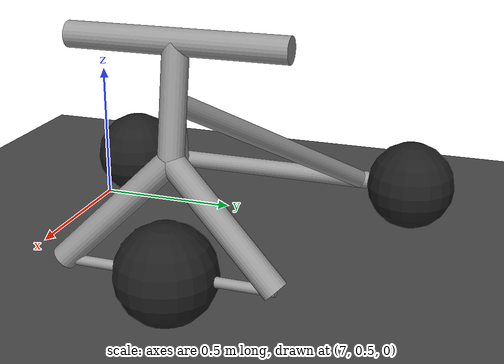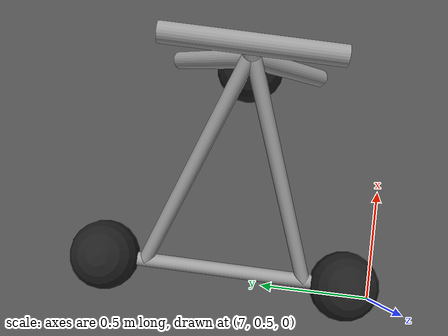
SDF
<sdf version="1.7">
 <world name="default">
  <model name="ground_plane">
   <static>1</static>
   <link name="link">
    <collision name="collision">
     <geometry><plane><normal>0 0 1</normal><size>100 100</size></plane></geometry>
     <surface>
      <contact><collide_bitmask>65535</collide_bitmask></contact>
      <friction><ode><mu>100</mu><mu2>50</mu2></ode></friction>
     </surface>
    </collision>
    <visual name="visual">
     <cast_shadows>0</cast_shadows>
     <geometry><plane><normal>0 0 1</normal><size>100 100</size></plane></geometry>
     <material>
      <script><uri>file://media/materials/scripts/gazebo.material</uri><name>Gazebo/Grey</name></script>
     </material>
    </visual>
   </link>
  </model>
  <model name="asphalt_plane">
   <static>1</static>
   <link name="link">
    <collision name="collision"><geometry><box><size>20 20 0.1</size></box></geometry></collision>
    <visual name="visual">
     <cast_shadows>0</cast_shadows>
     <geometry><box><size>20 20 0.1</size></box></geometry>
     <material>
      <script>
       <uri>model://asphalt_plane/materials/scripts</uri>
       <uri>model://asphalt_plane/materials/textures</uri>
       <name>vrc/asphalt</name>
      </script>
     </material>
    </visual>
   </link>
   <pose>0.038483 -0.02122 0 0 -0 0</pose>
  </model>
  <model name="trisphere_cycle">
   <link name="frame">
    <pose>-0.408559 0 0.385023 0 -0.522021 0</pose>
    <inertial>
     <mass>10</mass>
     <inertia><ixx>0.228</ixx><iyy>0.743521</iyy><izz>0.965521</izz><ixy>0</ixy><ixz>0</ixz><iyz>0</iyz></inertia>
    </inertial>
    <collision name="axle_collision">
     <pose>-0.471335 0 0 1.5708 -0 0</pose>
     <geometry><cylinder><length>1.03923</length><radius>0.03</radius></cylinder></geometry>
    </collision>
    <visual name="axle_visual">
     <pose>-0.471335 0 0 1.5708 -0 0</pose>
     <geometry><cylinder><length>1.03923</length><radius>0.03</radius></cylinder></geometry>
     <material>
      <script><uri>file://media/materials/scripts/gazebo.material</uri><name>Gazebo/Grey</name></script>
     </material>
    </visual>
    <collision name="frame_left_collision">
     <pose>0 0.171552 0 -2.79253 1.57079 3.14159</pose>
     <geometry><cylinder><length>1.00317</length><radius>0.03</radius></cylinder></geometry>
    </collision>
    <visual name="frame_left_visual">
     <pose>0 0.171552 0 -2.79253 1.57079 3.14159</pose>
     <geometry><cylinder><length>1.00317</length><radius>0.03</radius></cylinder></geometry>
     <material>
      <script><uri>file://media/materials/scripts/gazebo.material</uri><name>Gazebo/Grey</name></script>
     </material>
    </visual>
    <collision name="frame_right_collision">
     <pose>0 -0.171552 0 2.79253 1.57079 -3.14159</pose>
     <geometry><cylinder><length>1.00317</length><radius>0.03</radius></cylinder></geometry>
    </collision>
    <visual name="frame_right_visual">
     <pose>0 -0.171552 0 2.79253 1.57079 -3.14159</pose>
     <geometry><cylinder><length>1.00317</length><radius>0.03</radius></cylinder></geometry>
     <material>
      <script><uri>file://media/materials/scripts/gazebo.material</uri><name>Gazebo/Grey</name></script>
     </material>
    </visual>
   </link>
   <link name="fork">
    <pose>0.041441 0 0.385023 0 -0.174533 0</pose>
    <inertial>
     <mass>3</mass>
     <inertia>
      <ixx>0.158203</ixx>
      <iyy>0.0583594</iyy>
      <izz>0.102656</izz>
      <ixy>0</ixy>
      <ixz>0</ixz>
      <iyz>0</iyz>
     </inertia>
    </inertial>
    <collision name="handlebars_collision">
     <pose>0 0 0.397748 1.5708 -0 0</pose>
     <geometry><cylinder><length>0.636396</length><radius>0.0375</radius></cylinder></geometry>
    </collision>
    <visual name="handlebars_visual">
     <pose>0 0 0.397748 1.5708 -0 0</pose>
     <geometry><cylinder><length>0.636396</length><radius>0.0375</radius></cylinder></geometry>
     <material>
      <script><uri>file://media/materials/scripts/gazebo.material</uri><name>Gazebo/Grey</name></script>
     </material>
    </visual>
    <collision name="headtube_collision">
     <pose>0 0 0.238649 0 -0 0</pose>
     <geometry><cylinder><length>0.318198</length><radius>0.0375</radius></cylinder></geometry>
    </collision>
    <visual name="headtube_visual">
     <pose>0 0 0.238649 0 -0 0</pose>
     <geometry><cylinder><length>0.318198</length><radius>0.0375</radius></cylinder></geometry>
     <material>
      <script><uri>file://media/materials/scripts/gazebo.material</uri><name>Gazebo/Grey</name></script>
     </material>
    </visual>
    <collision name="spindle_collision">
     <pose>0 0 -0.238649 1.5708 -0 0</pose>
     <geometry><cylinder><length>0.636396</length><radius>0.015</radius></cylinder></geometry>
    </collision>
    <visual name="spindle_visual">
     <pose>0 0 -0.238649 1.5708 -0 0</pose>
     <geometry><cylinder><length>0.636396</length><radius>0.015</radius></cylinder></geometry>
     <material>
      <script><uri>file://media/materials/scripts/gazebo.material</uri><name>Gazebo/Grey</name></script>
     </material>
    </visual>
    <collision name="fork_left_collision">
     <pose>0 0.159099 -0.07955 0.785398 -0 0</pose>
     <geometry><cylinder><length>0.45</length><radius>0.0375</radius></cylinder></geometry>
    </collision>
    <visual name="fork_left_visual">
     <pose>0 0.159099 -0.07955 0.785398 -0 0</pose>
     <geometry><cylinder><length>0.45</length><radius>0.0375</radius></cylinder></geometry>
     <material>
      <script><uri>file://media/materials/scripts/gazebo.material</uri><name>Gazebo/Grey</name></script>
     </material>
    </visual>
    <collision name="fork_right_collision">
     <pose>0 -0.159099 -0.07955 -0.785398 0 0</pose>
     <geometry><cylinder><length>0.45</length><radius>0.0375</radius></cylinder></geometry>
    </collision>
    <visual name="fork_right_visual">
     <pose>0 -0.159099 -0.07955 -0.785398 0 0</pose>
     <geometry><cylinder><length>0.45</length><radius>0.0375</radius></cylinder></geometry>
     <material>
      <script><uri>file://media/materials/scripts/gazebo.material</uri><name>Gazebo/Grey</name></script>
     </material>
    </visual>
   </link>
   <link name="wheel_front">
    <pose>0.082882 0 0.15 0 -0 0</pose>
    <inertial>
     <mass>0.5</mass>
     <inertia><ixx>0.0045</ixx><iyy>0.0045</iyy><izz>0.0045</izz><ixy>0</ixy><ixz>0</ixz><iyz>0</iyz></inertia>
    </inertial>
    <collision name="collision">
     <geometry><sphere><radius>0.15</radius></sphere></geometry>
     <surface><contact><ode><kp>1e+08</kp><kd>1</kd><min_depth>0.0005</min_depth></ode></contact></surface>
    </collision>
    <visual name="visual">
     <geometry><sphere><radius>0.15</radius></sphere></geometry>
     <material>
      <script><uri>file://media/materials/scripts/gazebo.material</uri><name>Gazebo/Black</name></script>
     </material>
    </visual>
   </link>
   <joint name="wheel_front_steer" type="revolute">
    <parent>frame</parent>
    <child>fork</child>
    <axis>
     <xyz>0 0 1</xyz>
     <limit><lower>-0.959931</lower><upper>0.959931</upper></limit>
     <dynamics><spring_reference>0</spring_reference><spring_stiffness>0</spring_stiffness></dynamics>
    </axis>
   </joint>
   <joint name="wheel_front_spin" type="revolute">
    <parent>fork</parent>
    <child>wheel_front</child>
    <axis>
     <xyz>0 1 0</xyz>
     <limit><lower>-1e+16</lower><upper>1e+16</upper></limit>
     <dynamics><spring_reference>0</spring_reference><spring_stiffness>0</spring_stiffness></dynamics>
    </axis>
   </joint>
   <link name="wheel_rear_left">
    <pose>-0.817118 0.519615 0.15 0 -0 0</pose>
    <inertial>
     <mass>0.5</mass>
     <inertia><ixx>0.0045</ixx><iyy>0.0045</iyy><izz>0.0045</izz><ixy>0</ixy><ixz>0</ixz><iyz>0</iyz></inertia>
    </inertial>
    <collision name="collision">
     <geometry><sphere><radius>0.15</radius></sphere></geometry>
     <surface><contact><ode><kp>1e+08</kp><kd>1</kd><min_depth>0.0005</min_depth></ode></contact></surface>
    </collision>
    <visual name="visual">
     <geometry><sphere><radius>0.15</radius></sphere></geometry>
     <material>
      <script><uri>file://media/materials/scripts/gazebo.material</uri><name>Gazebo/Black</name></script>
     </material>
    </visual>
   </link>
   <joint name="wheel_rear_left_spin" type="revolute">
    <parent>frame</parent>
    <child>wheel_rear_left</child>
    <axis>
     <xyz>0 1 0</xyz>
     <limit><lower>-1e+16</lower><upper>1e+16</upper></limit>
     <dynamics><spring_reference>0</spring_reference><spring_stiffness>0</spring_stiffness></dynamics>
    </axis>
   </joint>
   <link name="wheel_rear_right">
    <pose>-0.817118 -0.519615 0.15 0 -0 0</pose>
    <inertial>
     <mass>0.5</mass>
     <inertia><ixx>0.0045</ixx><iyy>0.0045</iyy><izz>0.0045</izz><ixy>0</ixy><ixz>0</ixz><iyz>0</iyz></inertia>
    </inertial>
    <collision name="collision">
     <geometry><sphere><radius>0.15</radius></sphere></geometry>
     <surface><contact><ode><kp>1e+08</kp><kd>1</kd><min_depth>0.0005</min_depth></ode></contact></surface>
    </collision>
    <visual name="visual">
     <geometry><sphere><radius>0.15</radius></sphere></geometry>
     <material>
      <script><uri>file://media/materials/scripts/gazebo.material</uri><name>Gazebo/Black</name></script>
     </material>
    </visual>
   </link>
   <joint name="wheel_rear_right_spin" type="revolute">
    <parent>frame</parent>
    <child>wheel_rear_right</child>
    <axis>
     <xyz>0 1 0</xyz>
     <limit><lower>-1e+16</lower><upper>1e+16</upper></limit>
     <dynamics><spring_reference>0</spring_reference><spring_stiffness>0</spring_stiffness></dynamics>
    </axis>
   </joint>
   <pose>7.88283 1.17556 0.049499 0 1e-06 -0.007399</pose>
  </model>
 </world>
</sdf>
